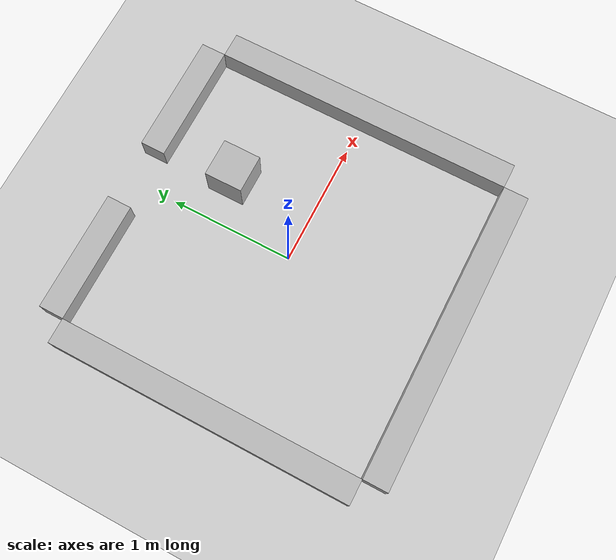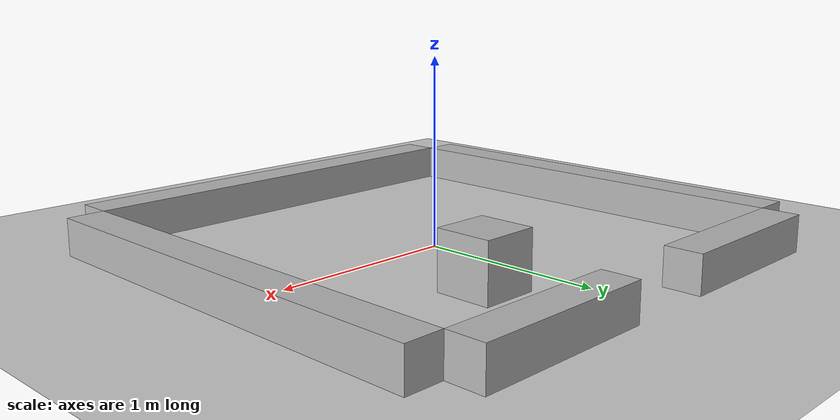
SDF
<sdf version="1.4">
 <world name="default">
  <include><uri>model://sun</uri></include>
  <include><uri>model://ground_plane</uri></include>
  <include><uri>model://evac_room</uri></include>
  <include><pose>0.376 0.675 0 0 0 0</pose><uri>model://small_box</uri></include>
 </world>
</sdf>

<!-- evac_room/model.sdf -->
<sdf version="1.5">

  <!-- evac_room (8ft x 8ft, single exit) // SDF MODEL DEFINITION -->
  <model name="evac_room">
    <static>true</static>
    <link name="walls">

      <visual name="wall_NW_visual">
        <pose>-0.7346 1.3192 0.1 0 0 0</pose>
        <geometry>
          <box>
            <size>0.9692 0.2 0.2</size>
          </box>
        </geometry>
      </visual>
      <collision name="wall_NW_collision">
        <pose>-0.7346 1.3192 0.1 0 0 0</pose>
        <geometry>
          <box>
            <size>0.9692 0.2 0.2</size>
          </box>
        </geometry>
      </collision>

      <visual name="wall_NE_visual">
        <pose>0.7346 1.3192 0.1 0 0 0</pose>
        <geometry>
          <box>
            <size>0.9692 0.2 0.2</size>
          </box>
        </geometry>
      </visual>
      <collision name="wall_NE_collision">
        <pose>0.7346 1.3192 0.1 0 0 0</pose>
        <geometry>
          <box>
            <size>0.9692 0.2 0.2</size>
          </box>
        </geometry>
      </collision>

      <visual name="wall_E_visual">
        <pose>1.3192 0 0.1 0 0 0</pose>
        <geometry>
          <box>
            <size>0.2 2.4384 0.2</size>
          </box>
        </geometry>
      </visual>
      <collision name="wall_E_collision">
        <pose>1.3192 0 0.1 0 0 0</pose>
        <geometry>
          <box>
            <size>0.2 2.4384 0.2</size>
          </box>
        </geometry>
      </collision>

      <visual name="wall_S_visual">
        <pose>0 -1.3192 0.1 0 0 0</pose>
        <geometry>
          <box>
            <size>2.4384 0.2 0.2</size>
          </box>
        </geometry>
      </visual>
      <collision name="wall_S_collision">
        <pose>0 -1.3192 0.1 0 0 0</pose>
        <geometry>
          <box>
            <size>2.4384 0.2 0.2</size>
          </box>
        </geometry>
      </collision>

      <visual name="wall_W_visual">
        <pose>-1.3192 0 0.1 0 0 0</pose>
        <geometry>
          <box>
            <size>0.2 2.4384 0.2</size>
          </box>
        </geometry>
      </visual>
      <collision name="wall_W_collision">
        <pose>-1.3192 0 0.1 0 0 0</pose>
        <geometry>
          <box>
            <size>0.2 2.4384 0.2</size>
          </box>
        </geometry>
      </collision>

    </link>
  </model>
</sdf>

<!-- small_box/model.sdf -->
<sdf version="1.5">

  <!-- small_box obstacle (1ft x 1ft x 1ft) // SDF MODEL DEFINITION -->
  <model name="small_box">
    <static>true</static>
    <link name="box">
      <visual name="box_visual">
        <pose>0 0 0.1524 0 0 0</pose>
        <geometry>
          <box>
            <size>0.3048 0.3048 0.3048</size>
          </box>
        </geometry>
      </visual>
      <collision name="box_collision">
        <pose>0 0 0.1524 0 0 0</pose>
        <geometry>
          <box>
            <size>0.3048 0.3048 0.3048</size>
          </box>
        </geometry>
      </collision>
    </link>
  </model>
</sdf>
